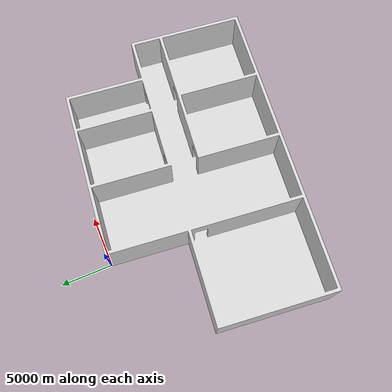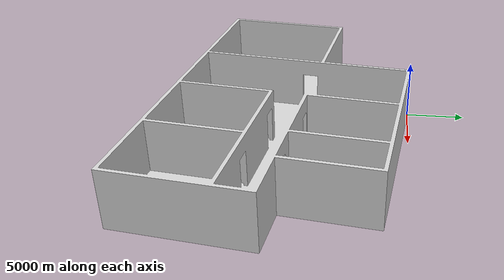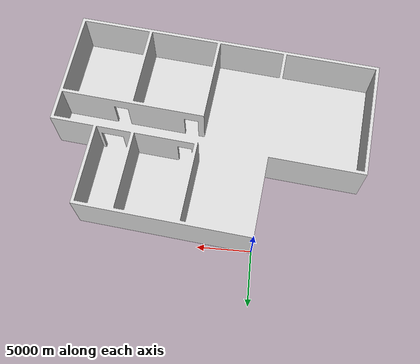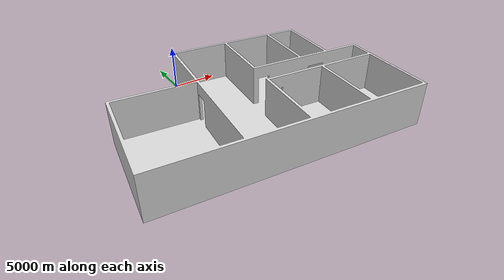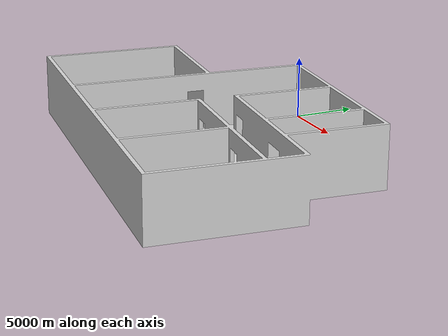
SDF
<?xml version="1.0"?>

<sdf version="1.6">
  <world name="apt">
    <physics type="ode">
      <max_step_size>0.004</max_step_size>
      <real_time_factor>1.0</real_time_factor>
      <real_time_update_rate>250</real_time_update_rate>
    </physics>
    <plugin name="gz::sim::systems::ROSClock" filename="libgz-sim-ros-clock-system.so"/>
    <plugin name="gz::sim::systems::Physics" filename="gz-sim-physics-system"/>
    <plugin name="gz::sim::systems::UserCommands" filename="gz-sim-user-commands-system"/>
    <plugin name="gz::sim::systems::SceneBroadcaster" filename="gz-sim-scene-broadcaster-system"/>
    <plugin name="gz::sim::systems::Contact" filename="gz-sim-contact-system"/>
    <plugin name="gz::sim::systems::Imu" filename="gz-sim-imu-system"/>
    <plugin name="gz::sim::systems::AirPressure" filename="gz-sim-air-pressure-system"/>
    <plugin name="gz::sim::systems::ApplyLinkWrench" filename="gz-sim-apply-link-wrench-system"/>
    <plugin name="gz::sim::systems::NavSat" filename="gz-sim-navsat-system"/>
    <plugin name="gz::sim::systems::Sensors" filename="gz-sim-sensors-system">
      <render_engine>ogre2</render_engine>
    </plugin>

    <gui fullscreen="false">
      <!-- 3D scene -->
      <plugin filename="MinimalScene" name="3D View">
        <gz-gui>
          <title>3D View</title>
          <property type="bool" key="showTitleBar">false</property>
          <property type="string" key="state">docked</property>
        </gz-gui>
        <engine>ogre2</engine>
        <scene>scene</scene>
        <ambient_light>0.4 0.4 0.4</ambient_light>
        <background_color>0.8 0.8 0.8</background_color>
        <camera_pose>-6 0 6 0 0.5 0</camera_pose>
        <camera_clip>
          <near>0.25</near>
          <far>25000</far>
        </camera_clip>
      </plugin>
      <!-- Plugins that add functionality to the scene -->
      <plugin filename="EntityContextMenuPlugin" name="Entity context menu">
        <gz-gui>
          <property key="state" type="string">floating</property>
          <property key="width" type="double">5</property>
          <property key="height" type="double">5</property>
          <property key="showTitleBar" type="bool">false</property>
        </gz-gui>
      </plugin>
      <plugin filename="GzSceneManager" name="Scene Manager">
        <gz-gui>
          <property key="resizable" type="bool">false</property>
          <property key="width" type="double">5</property>
          <property key="height" type="double">5</property>
          <property key="state" type="string">floating</property>
          <property key="showTitleBar" type="bool">false</property>
        </gz-gui>
      </plugin>
      <plugin filename="InteractiveViewControl" name="Interactive view control">
        <gz-gui>
          <property key="resizable" type="bool">false</property>
          <property key="width" type="double">5</property>
          <property key="height" type="double">5</property>
          <property key="state" type="string">floating</property>
          <property key="showTitleBar" type="bool">false</property>
        </gz-gui>
      </plugin>
      <plugin filename="CameraTracking" name="Camera Tracking">
        <gz-gui>
          <property key="resizable" type="bool">false</property>
          <property key="width" type="double">5</property>
          <property key="height" type="double">5</property>
          <property key="state" type="string">floating</property>
          <property key="showTitleBar" type="bool">false</property>
        </gz-gui>
      </plugin>
      <plugin filename="MarkerManager" name="Marker manager">
        <gz-gui>
          <property key="resizable" type="bool">false</property>
          <property key="width" type="double">5</property>
          <property key="height" type="double">5</property>
          <property key="state" type="string">floating</property>
          <property key="showTitleBar" type="bool">false</property>
        </gz-gui>
      </plugin>
      <plugin filename="SelectEntities" name="Select Entities">
        <gz-gui>
          <anchors target="Select entities">
            <line own="right" target="right"/>
            <line own="top" target="top"/>
          </anchors>
          <property key="resizable" type="bool">false</property>
          <property key="width" type="double">5</property>
          <property key="height" type="double">5</property>
          <property key="state" type="string">floating</property>
          <property key="showTitleBar" type="bool">false</property>
        </gz-gui>
      </plugin>
      <plugin filename="VisualizationCapabilities" name="Visualization Capabilities">
        <gz-gui>
          <property key="resizable" type="bool">false</property>
          <property key="width" type="double">5</property>
          <property key="height" type="double">5</property>
          <property key="state" type="string">floating</property>
          <property key="showTitleBar" type="bool">false</property>
        </gz-gui>
      </plugin>
      <plugin filename="Spawn" name="Spawn Entities">
        <gz-gui>
          <anchors target="Select entities">
            <line own="right" target="right"/>
            <line own="top" target="top"/>
          </anchors>
          <property key="resizable" type="bool">false</property>
          <property key="width" type="double">5</property>
          <property key="height" type="double">5</property>
          <property key="state" type="string">floating</property>
          <property key="showTitleBar" type="bool">false</property>
        </gz-gui>
      </plugin>
      <plugin name="World control" filename="WorldControl">
        <gz-gui>
          <title>World control</title>
          <property type="bool" key="showTitleBar">0</property>
          <property type="bool" key="resizable">0</property>
          <property type="double" key="height">72</property>
          <property type="double" key="width">121</property>
          <property type="double" key="z">1</property>
          <property type="string" key="state">floating</property>
          <anchors target="3D View">
            <line own="left" target="left"/>
            <line own="bottom" target="bottom"/>
          </anchors>
        </gz-gui>
        <play_pause>1</play_pause>
        <step>1</step>
        <start_paused>1</start_paused>
      </plugin>
      <plugin name="World stats" filename="WorldStats">
        <gz-gui>
          <title>World stats</title>
          <property type="bool" key="showTitleBar">0</property>
          <property type="bool" key="resizable">0</property>
          <property type="double" key="height">110</property>
          <property type="double" key="width">290</property>
          <property type="double" key="z">1</property>
          <property type="string" key="state">floating</property>
          <anchors target="3D View">
            <line own="right" target="right"/>
            <line own="bottom" target="bottom"/>
          </anchors>
        </gz-gui>
        <sim_time>1</sim_time>
        <real_time>1</real_time>
        <real_time_factor>1</real_time_factor>
        <iterations>1</iterations>
      </plugin>
      <plugin name="Entity tree" filename="EntityTree"/>
    </gui>

    <gravity>0 0 -9.8</gravity>
    <magnetic_field>6e-06 2.3e-05 -4.2e-05</magnetic_field>
    <atmosphere type="adiabatic"/>

    <spherical_coordinates>
      <surface_model>EARTH_WGS84</surface_model>
      <world_frame_orientation>ENU</world_frame_orientation>
      <latitude_deg>50.088384</latitude_deg>
      <longitude_deg>19.939128</longitude_deg>
      <elevation>0</elevation>
      <heading_deg>0</heading_deg>
    </spherical_coordinates>

    <model name="apt">
      <static>true</static>
      <link name="mesh">
        <pose>0.0 0.0 1.75 0 0 -1.68</pose>
        <visual name="visual">
          <geometry>
            <mesh>
              <uri>model://apt/meshes/apt.dae</uri>
              <scale>1.5 1.5 1.5</scale>
            </mesh>
          </geometry>
        </visual>
        <collision name="visual">
          <geometry>
            <mesh>
              <uri>model://apt/meshes/apt.dae</uri>
              <scale>1.5 1.5 1.5</scale>
            </mesh>
          </geometry>
        </collision>
      </link>

    <light name="sunUTC" type="directional">
      <pose>0 0 500 0 -0 0</pose>
      <cast_shadows>true</cast_shadows>
      <intensity>1</intensity>
      <direction>0.001 0.625 -0.78</direction>
      <diffuse>0.904 0.904 0.904 1</diffuse>
      <specular>0.271 0.271 0.271 1</specular>
      <attenuation>
        <range>2000</range>
        <linear>0</linear>
        <constant>1</constant>
        <quadratic>0</quadratic>
      </attenuation>
      <spot>
        <inner_angle>0</inner_angle>
        <outer_angle>0</outer_angle>
        <falloff>0</falloff>
      </spot>
    </light>

      <link name="map">
        <light type="directional" name="sun">
          <cast_shadows>true</cast_shadows>
          <pose>0 0 4 0 0 0</pose>
          <diffuse>0.8 0.8 0.8 1</diffuse>
          <specular>0.2 0.2 0.2 1</specular>
          <attenuation>
            <range>1000</range>
            <constant>0.9</constant>
            <linear>0.01</linear>
            <quadratic>0.001</quadratic>
          </attenuation>
          <direction>-0.5 0.1 -0.9</direction>
        </light>
        <collision name="collision">
          <geometry>
            <plane>
              <normal>0 0 1</normal>
              <size>25 25</size>
            </plane>
          </geometry>
        </collision>
        <visual name="visual">
          <geometry>
            <plane>
              <normal>0 0 1</normal>
              <size>25 25</size>
            </plane>
          </geometry>
          <material>
            <ambient>0.8 0.8 0.8 1</ambient>
            <diffuse>0.8 0.8 0.8 1</diffuse>
            <specular>0.8 0.8 0.8 1</specular>
          </material>
        </visual>
      </link>
    </model>

  </world>
</sdf>
